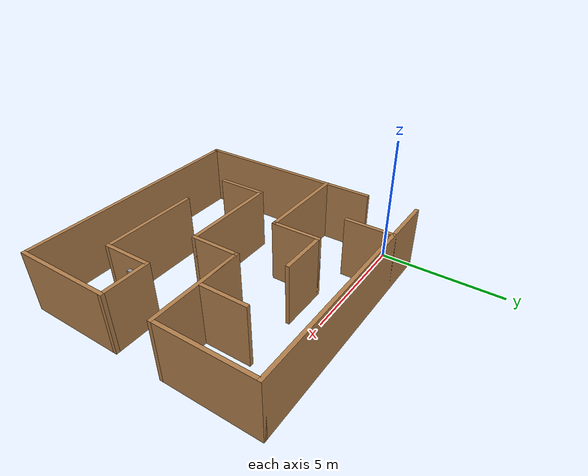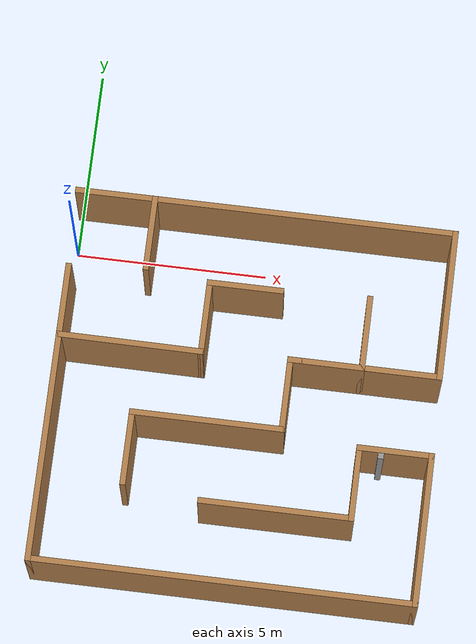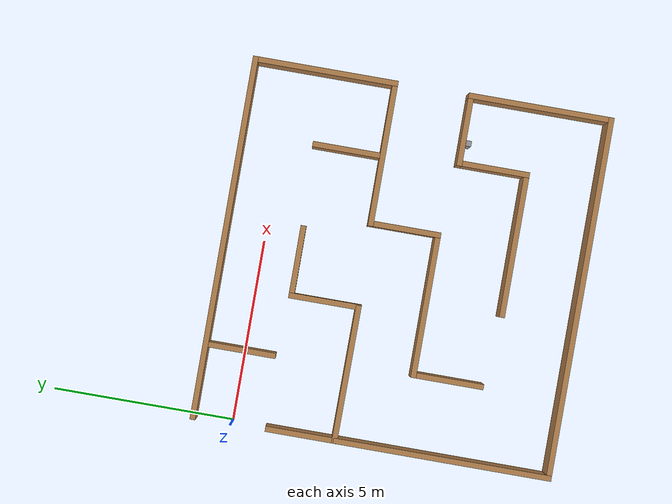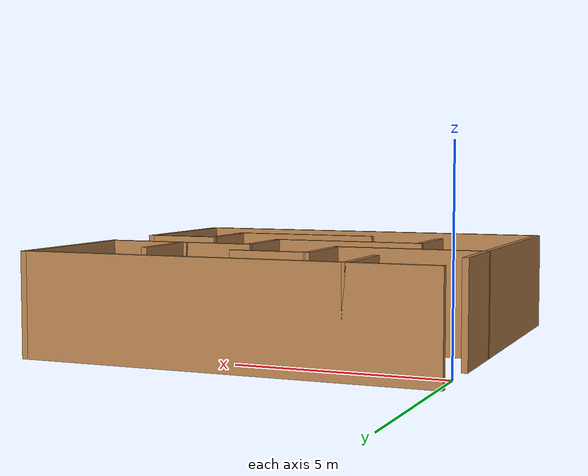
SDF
<?xml version='1.0'?>
<sdf version='1.7'>
  <model name='Laberinto'>
    <pose>4.90328 -3.82898 0 0 -0 0</pose>
    <link name='Wall_42'>
      <collision name='Wall_42_Collision'>
        <geometry>
          <box>
            <size>6 0.15 2.5</size>
          </box>
        </geometry>
        <pose>0 0 1.25 0 -0 0</pose>
      </collision>
      <visual name='Wall_42_Visual'>
        <pose>0 0 1.25 0 -0 0</pose>
        <geometry>
          <box>
            <size>6 0.15 2.5</size>
          </box>
        </geometry>
        <material>
          <script>
            <uri>file://media/materials/scripts/gazebo.material</uri>
            <name>Gazebo/Wood</name>
          </script>
          <ambient>1 1 1 1</ambient>
        </material>
        <meta>
          <layer>0</layer>
        </meta>
      </visual>
      <pose>-4.91419 -1.96793 0 0 -0 -1.5708</pose>
    </link>
    <link name='Wall_44'>
      <collision name='Wall_44_Collision'>
        <geometry>
          <box>
            <size>10 0.15 2.5</size>
          </box>
        </geometry>
        <pose>0 0 1.25 0 -0 0</pose>
      </collision>
      <visual name='Wall_44_Visual'>
        <pose>0 0 1.25 0 -0 0</pose>
        <geometry>
          <box>
            <size>10 0.15 2.5</size>
          </box>
        </geometry>
        <material>
          <script>
            <uri>file://media/materials/scripts/gazebo.material</uri>
            <name>Gazebo/Wood</name>
          </script>
          <ambient>1 1 1 1</ambient>
        </material>
        <meta>
          <layer>0</layer>
        </meta>
      </visual>
      <pose>-0.010813 4.89293 0 0 -0 0</pose>
    </link>
    <link name='Wall_46'>
      <collision name='Wall_46_Collision'>
        <geometry>
          <box>
            <size>3.80563 0.15 2.5</size>
          </box>
        </geometry>
        <pose>0 0 1.25 0 -0 0</pose>
      </collision>
      <visual name='Wall_46_Visual'>
        <pose>0 0 1.25 0 -0 0</pose>
        <geometry>
          <box>
            <size>3.80563 0.15 2.5</size>
          </box>
        </geometry>
        <material>
          <script>
            <uri>file://media/materials/scripts/gazebo.material</uri>
            <name>Gazebo/Wood</name>
          </script>
          <ambient>1 1 1 1</ambient>
        </material>
        <meta>
          <layer>0</layer>
        </meta>
      </visual>
      <pose>-3.0865 0.989509 0 0 -0 -0.005916</pose>
    </link>
    <link name='Wall_48'>
      <collision name='Wall_48_Collision'>
        <geometry>
          <box>
            <size>2 0.15 2.5</size>
          </box>
        </geometry>
        <pose>0 0 1.25 0 -0 0</pose>
      </collision>
      <visual name='Wall_48_Visual'>
        <pose>0 0 1.25 0 -0 0</pose>
        <geometry>
          <box>
            <size>2 0.15 2.5</size>
          </box>
        </geometry>
        <material>
          <script>
            <uri>file://media/materials/scripts/gazebo.material</uri>
            <name>Gazebo/Wood</name>
          </script>
          <ambient>1 1 1 1</ambient>
        </material>
        <meta>
          <layer>0</layer>
        </meta>
      </visual>
      <pose>-1.23719 1.9037 0 0 -0 1.5708</pose>
    </link>
    <link name='Wall_50'>
      <collision name='Wall_50_Collision'>
        <geometry>
          <box>
            <size>1.97837 0.15 2.5</size>
          </box>
        </geometry>
        <pose>0 0 1.25 0 -0 0</pose>
      </collision>
      <visual name='Wall_50_Visual'>
        <pose>0 0 1.25 0 -0 0</pose>
        <geometry>
          <box>
            <size>1.97837 0.15 2.5</size>
          </box>
        </geometry>
        <material>
          <script>
            <uri>file://media/materials/scripts/gazebo.material</uri>
            <name>Gazebo/Wood</name>
          </script>
          <ambient>1 1 1 1</ambient>
        </material>
        <meta>
          <layer>0</layer>
        </meta>
      </visual>
      <pose>-4.91419 1.91451 0 0 -0 1.5708</pose>
    </link>
    <link name='Wall_52'>
      <collision name='Wall_52_Collision'>
        <geometry>
          <box>
            <size>2 0.15 2.5</size>
          </box>
        </geometry>
        <pose>0 0 1.25 0 -0 0</pose>
      </collision>
      <visual name='Wall_52_Visual'>
        <pose>0 0 1.25 0 -0 0</pose>
        <geometry>
          <box>
            <size>2 0.15 2.5</size>
          </box>
        </geometry>
        <material>
          <script>
            <uri>file://media/materials/scripts/gazebo.material</uri>
            <name>Gazebo/Wood</name>
          </script>
          <ambient>1 1 1 1</ambient>
        </material>
        <meta>
          <layer>0</layer>
        </meta>
      </visual>
      <pose>-2.92463 3.96793 0 0 -0 -1.5708</pose>
    </link>
    <link name='Wall_54'>
      <collision name='Wall_54_Collision'>
        <geometry>
          <box>
            <size>2 0.15 2.5</size>
          </box>
        </geometry>
        <pose>0 0 1.25 0 -0 0</pose>
      </collision>
      <visual name='Wall_54_Visual'>
        <pose>0 0 1.25 0 -0 0</pose>
        <geometry>
          <box>
            <size>2 0.15 2.5</size>
          </box>
        </geometry>
        <material>
          <script>
            <uri>file://media/materials/scripts/gazebo.material</uri>
            <name>Gazebo/Wood</name>
          </script>
          <ambient>1 1 1 1</ambient>
        </material>
        <meta>
          <layer>0</layer>
        </meta>
      </visual>
      <pose>-0.312192 2.8287 0 0 -0 0</pose>
    </link>
    <link name='Wall_56'>
      <collision name='Wall_56_Collision'>
        <geometry>
          <box>
            <size>4 0.15 2.5</size>
          </box>
        </geometry>
        <pose>0 0 1.25 0 -0 0</pose>
      </collision>
      <visual name='Wall_56_Visual'>
        <pose>0 0 1.25 0 -0 0</pose>
        <geometry>
          <box>
            <size>4 0.15 2.5</size>
          </box>
        </geometry>
        <material>
          <script>
            <uri>file://media/materials/scripts/gazebo.material</uri>
            <name>Gazebo/Wood</name>
          </script>
          <ambient>1 1 1 1</ambient>
        </material>
        <meta>
          <layer>0</layer>
        </meta>
      </visual>
      <pose>4.91419 2.96793 0 0 -0 -1.5708</pose>
    </link>
    <link name='Wall_57'>
      <collision name='Wall_57_Collision'>
        <geometry>
          <box>
            <size>4 0.15 2.5</size>
          </box>
        </geometry>
        <pose>0 0 1.25 0 -0 0</pose>
      </collision>
      <visual name='Wall_57_Visual'>
        <pose>0 0 1.25 0 -0 0</pose>
        <geometry>
          <box>
            <size>4 0.15 2.5</size>
          </box>
        </geometry>
        <material>
          <script>
            <uri>file://media/materials/scripts/gazebo.material</uri>
            <name>Gazebo/Wood</name>
          </script>
          <ambient>1 1 1 1</ambient>
        </material>
        <meta>
          <layer>0</layer>
        </meta>
      </visual>
      <pose>2.98919 1.04293 0 0 -0 3.14159</pose>
    </link>
    <link name='Wall_58'>
      <collision name='Wall_58_Collision'>
        <geometry>
          <box>
            <size>2 0.15 2.5</size>
          </box>
        </geometry>
        <pose>0 0 1.25 0 -0 0</pose>
      </collision>
      <visual name='Wall_58_Visual'>
        <pose>0 0 1.25 0 -0 0</pose>
        <geometry>
          <box>
            <size>2 0.15 2.5</size>
          </box>
        </geometry>
        <material>
          <script>
            <uri>file://media/materials/scripts/gazebo.material</uri>
            <name>Gazebo/Wood</name>
          </script>
          <ambient>1 1 1 1</ambient>
        </material>
        <meta>
          <layer>0</layer>
        </meta>
      </visual>
      <pose>1.98919 1.04293 0 0 -0 0</pose>
    </link>
    <link name='Wall_59'>
      <collision name='Wall_59_Collision'>
        <geometry>
          <box>
            <size>2 0.15 2.5</size>
          </box>
        </geometry>
        <pose>0 0 1.25 0 -0 0</pose>
      </collision>
      <visual name='Wall_59_Visual'>
        <pose>0 0 1.25 0 -0 0</pose>
        <geometry>
          <box>
            <size>2 0.15 2.5</size>
          </box>
        </geometry>
        <material>
          <script>
            <uri>file://media/materials/scripts/gazebo.material</uri>
            <name>Gazebo/Wood</name>
          </script>
          <ambient>1 1 1 1</ambient>
        </material>
        <meta>
          <layer>0</layer>
        </meta>
      </visual>
      <pose>2.91419 1.96793 0 0 -0 1.5708</pose>
    </link>
    <link name='Wall_62'>
      <collision name='Wall_62_Collision'>
        <geometry>
          <box>
            <size>0.15 0.15 2.5</size>
          </box>
        </geometry>
        <pose>0 0 1.25 0 -0 0</pose>
      </collision>
      <visual name='Wall_62_Visual'>
        <pose>0 0 1.25 0 -0 0</pose>
        <geometry>
          <box>
            <size>0.15 0.15 2.5</size>
          </box>
        </geometry>
        <material>
          <script>
            <uri>file://media/materials/scripts/gazebo.material</uri>
            <name>Gazebo/Grey</name>
          </script>
          <ambient>0 0 0 1</ambient>
        </material>
        <meta>
          <layer>0</layer>
        </meta>
      </visual>
      <pose>3.64955 -1.19308 0 0 -0 0</pose>
    </link>
    <link name='Wall_65'>
      <collision name='Wall_65_Collision'>
        <geometry>
          <box>
            <size>10 0.15 2.5</size>
          </box>
        </geometry>
        <pose>0 0 1.25 0 -0 0</pose>
      </collision>
      <visual name='Wall_65_Visual'>
        <pose>0 0 1.25 0 -0 0</pose>
        <geometry>
          <box>
            <size>10 0.15 2.5</size>
          </box>
        </geometry>
        <material>
          <script>
            <uri>file://media/materials/scripts/gazebo.material</uri>
            <name>Gazebo/Wood</name>
          </script>
          <ambient>1 1 1 1</ambient>
        </material>
        <meta>
          <layer>0</layer>
        </meta>
      </visual>
      <pose>0.010813 -4.89293 0 0 -0 0</pose>
    </link>
    <link name='Wall_66'>
      <collision name='Wall_66_Collision'>
        <geometry>
          <box>
            <size>4 0.15 2.5</size>
          </box>
        </geometry>
        <pose>0 0 1.25 0 -0 0</pose>
      </collision>
      <visual name='Wall_66_Visual'>
        <pose>0 0 1.25 0 -0 0</pose>
        <geometry>
          <box>
            <size>4 0.15 2.5</size>
          </box>
        </geometry>
        <material>
          <script>
            <uri>file://media/materials/scripts/gazebo.material</uri>
            <name>Gazebo/Wood</name>
          </script>
          <ambient>1 1 1 1</ambient>
        </material>
        <meta>
          <layer>0</layer>
        </meta>
      </visual>
      <pose>4.93581 -2.96793 0 0 -0 1.5708</pose>
    </link>
    <link name='Wall_67'>
      <collision name='Wall_67_Collision'>
        <geometry>
          <box>
            <size>2 0.15 2.5</size>
          </box>
        </geometry>
        <pose>0 0 1.25 0 -0 0</pose>
      </collision>
      <visual name='Wall_67_Visual'>
        <pose>0 0 1.25 0 -0 0</pose>
        <geometry>
          <box>
            <size>2 0.15 2.5</size>
          </box>
        </geometry>
        <material>
          <script>
            <uri>file://media/materials/scripts/gazebo.material</uri>
            <name>Gazebo/Wood</name>
          </script>
          <ambient>1 1 1 1</ambient>
        </material>
        <meta>
          <layer>0</layer>
        </meta>
      </visual>
      <pose>4.01081 -1.04293 0 0 -0 3.14159</pose>
    </link>
    <link name='Wall_68'>
      <collision name='Wall_68_Collision'>
        <geometry>
          <box>
            <size>2 0.15 2.5</size>
          </box>
        </geometry>
        <pose>0 0 1.25 0 -0 0</pose>
      </collision>
      <visual name='Wall_68_Visual'>
        <pose>0 0 1.25 0 -0 0</pose>
        <geometry>
          <box>
            <size>2 0.15 2.5</size>
          </box>
        </geometry>
        <material>
          <script>
            <uri>file://media/materials/scripts/gazebo.material</uri>
            <name>Gazebo/Wood</name>
          </script>
          <ambient>1 1 1 1</ambient>
        </material>
        <meta>
          <layer>0</layer>
        </meta>
      </visual>
      <pose>3.08581 -1.96793 0 0 -0 -1.5708</pose>
    </link>
    <link name='Wall_69'>
      <collision name='Wall_69_Collision'>
        <geometry>
          <box>
            <size>4 0.15 2.5</size>
          </box>
        </geometry>
        <pose>0 0 1.25 0 -0 0</pose>
      </collision>
      <visual name='Wall_69_Visual'>
        <pose>0 0 1.25 0 -0 0</pose>
        <geometry>
          <box>
            <size>4 0.15 2.5</size>
          </box>
        </geometry>
        <material>
          <script>
            <uri>file://media/materials/scripts/gazebo.material</uri>
            <name>Gazebo/Wood</name>
          </script>
          <ambient>1 1 1 1</ambient>
        </material>
        <meta>
          <layer>0</layer>
        </meta>
      </visual>
      <pose>1.16081 -2.89293 0 0 -0 3.14159</pose>
    </link>
    <link name='Wall_72'>
      <collision name='Wall_72_Collision'>
        <geometry>
          <box>
            <size>2 0.15 2.5</size>
          </box>
        </geometry>
        <pose>0 0 1.25 0 -0 0</pose>
      </collision>
      <visual name='Wall_72_Visual'>
        <pose>0 0 1.25 0 -0 0</pose>
        <geometry>
          <box>
            <size>2 0.15 2.5</size>
          </box>
        </geometry>
        <material>
          <script>
            <uri>file://media/materials/scripts/gazebo.material</uri>
            <name>Gazebo/Wood</name>
          </script>
          <ambient>1 1 1 1</ambient>
        </material>
        <meta>
          <layer>0</layer>
        </meta>
      </visual>
      <pose>1.06419 0.117929 0 0 -0 -1.5708</pose>
    </link>
    <link name='Wall_73'>
      <collision name='Wall_73_Collision'>
        <geometry>
          <box>
            <size>4 0.15 2.5</size>
          </box>
        </geometry>
        <pose>0 0 1.25 0 -0 0</pose>
      </collision>
      <visual name='Wall_73_Visual'>
        <pose>0 0 1.25 0 -0 0</pose>
        <geometry>
          <box>
            <size>4 0.15 2.5</size>
          </box>
        </geometry>
        <material>
          <script>
            <uri>file://media/materials/scripts/gazebo.material</uri>
            <name>Gazebo/Wood</name>
          </script>
          <ambient>1 1 1 1</ambient>
        </material>
        <meta>
          <layer>0</layer>
        </meta>
      </visual>
      <pose>-0.860813 -0.80707 0 0 -0 3.14159</pose>
    </link>
    <link name='Wall_74'>
      <collision name='Wall_74_Collision'>
        <geometry>
          <box>
            <size>2 0.15 2.5</size>
          </box>
        </geometry>
        <pose>0 0 1.25 0 -0 0</pose>
      </collision>
      <visual name='Wall_74_Visual'>
        <pose>0 0 1.25 0 -0 0</pose>
        <geometry>
          <box>
            <size>2 0.15 2.5</size>
          </box>
        </geometry>
        <material>
          <script>
            <uri>file://media/materials/scripts/gazebo.material</uri>
            <name>Gazebo/Wood</name>
          </script>
          <ambient>1 1 1 1</ambient>
        </material>
        <meta>
          <layer>0</layer>
        </meta>
      </visual>
      <pose>-2.78581 -1.73207 0 0 -0 -1.5708</pose>
    </link>
    <static>1</static>
  </model>
</sdf>
